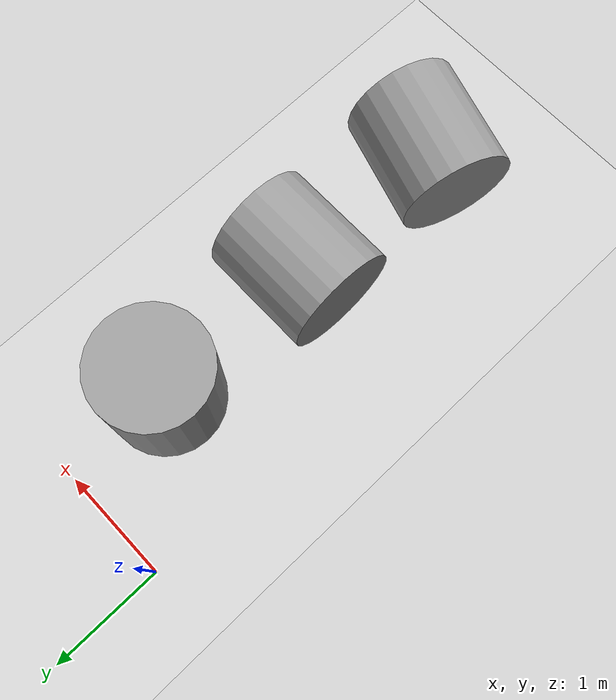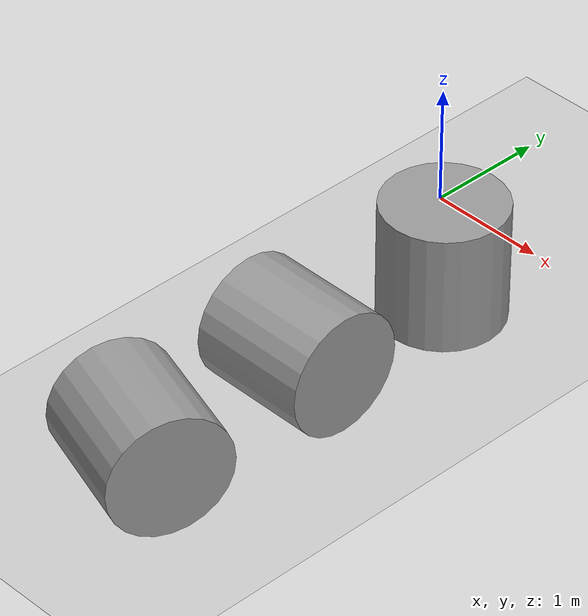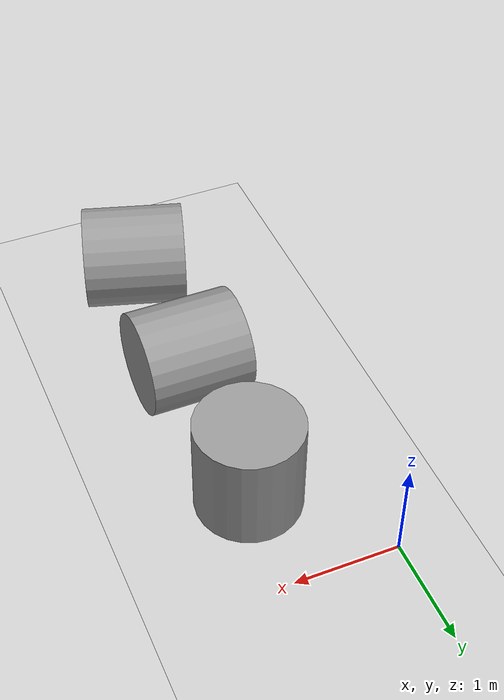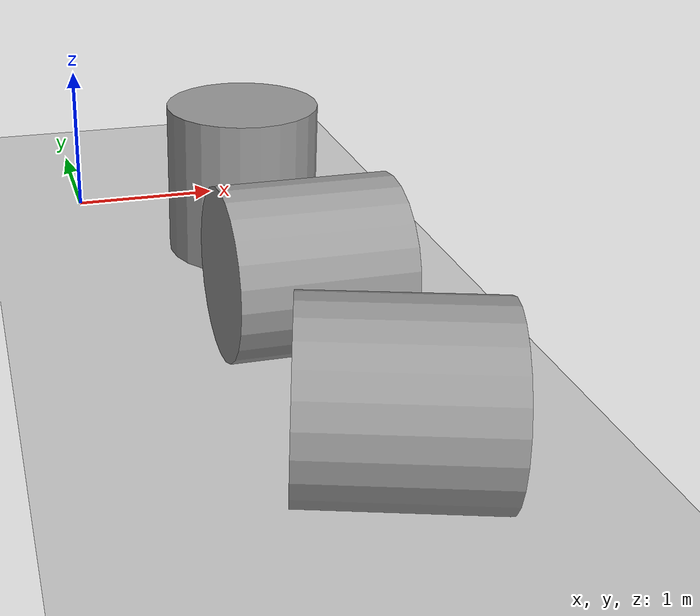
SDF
<sdf version='1.4'>
  <world name='default'>
    <include><uri>model://sun</uri></include>
    <include><uri>model://ground_plane</uri></include>

    <model name="ray_sensor">
      <pose>-0.5 -2.5 0.5  0 0 0</pose>
      <link name='link'>
        <gravity>false</gravity>
        <sensor name="laser" type="ray">
          <ray>
            <scan>
              <horizontal>
                <samples>99</samples>
                <resolution>1</resolution>
                <min_angle>-0.8</min_angle>
                <max_angle>0.8</max_angle>
              </horizontal>
            </scan>
            <range>
              <min>0.08</min>
              <max>10</max>
              <resolution>0.01</resolution>
            </range>
          </ray>
          <plugin name="laser" filename="libRayPlugin.so" />
          <always_on>1</always_on>
          <update_rate>30</update_rate>
          <visualize>true</visualize>
        </sensor>
      </link>
    </model>
    <model name='cylinder_upright'>
      <pose>1.0 -1.0 0.5  0 0 0</pose>
      <link name='link'>
        <collision name='collision'>
          <geometry>
            <cylinder>
              <radius>0.5</radius>
              <length>1.0</length>
            </cylinder>
          </geometry>
        </collision>
        <visual name='visual'>
          <geometry>
            <cylinder>
              <radius>0.5</radius>
              <length>1.0</length>
            </cylinder>
          </geometry>
          <material>
            <script>
              <uri>file://media/materials/scripts/gazebo.material</uri>
              <name>Gazebo/Grey</name>
            </script>
          </material>
        </visual>
      </link>
    </model>
    <model name='cylinder_side1'>
      <pose>1.0 -2.5 0.5  0 1.570796 0</pose>
      <link name='link'>
        <collision name='collision'>
          <geometry>
            <cylinder>
              <radius>0.5</radius>
              <length>1.0</length>
            </cylinder>
          </geometry>
        </collision>
        <visual name='visual'>
          <geometry>
            <cylinder>
              <radius>0.5</radius>
              <length>1.0</length>
            </cylinder>
          </geometry>
          <material>
            <script>
              <uri>file://media/materials/scripts/gazebo.material</uri>
              <name>Gazebo/Grey</name>
            </script>
          </material>
        </visual>
      </link>
    </model>
    <model name='cylinder_side2'>
      <pose>1.0 -4.0 0.5  0 1.570796 -0.3</pose>
      <link name='link'>
        <collision name='collision'>
          <geometry>
            <cylinder>
              <radius>0.5</radius>
              <length>1.0</length>
            </cylinder>
          </geometry>
        </collision>
        <visual name='visual'>
          <geometry>
            <cylinder>
              <radius>0.5</radius>
              <length>1.0</length>
            </cylinder>
          </geometry>
          <material>
            <script>
              <uri>file://media/materials/scripts/gazebo.material</uri>
              <name>Gazebo/Grey</name>
            </script>
          </material>
        </visual>
      </link>
    </model>
    <gui fullscreen='0'>
      <camera name='user_camera'>
        <pose>-0.3 -2.5 4.5  0 1.3 0</pose>
        <view_controller>orbit</view_controller>
      </camera>
    </gui>
  </world>
</sdf>
